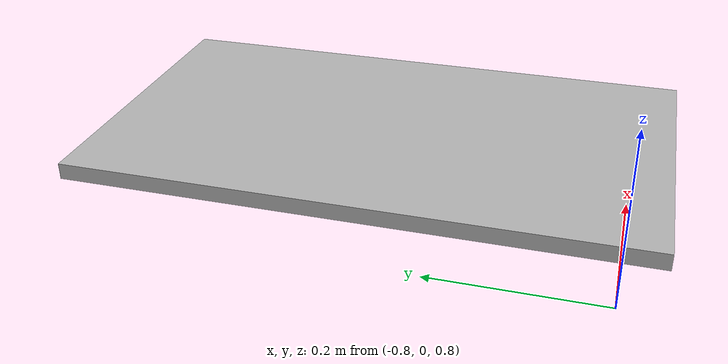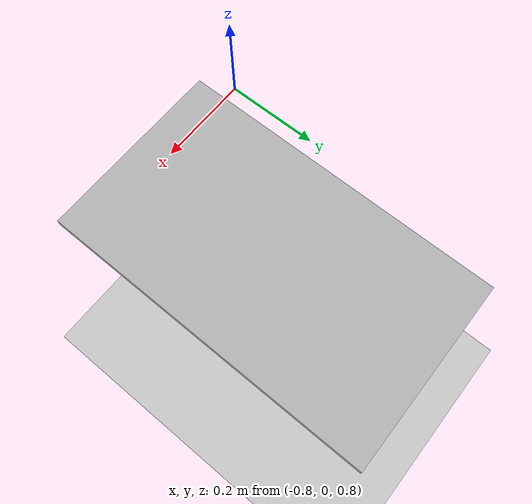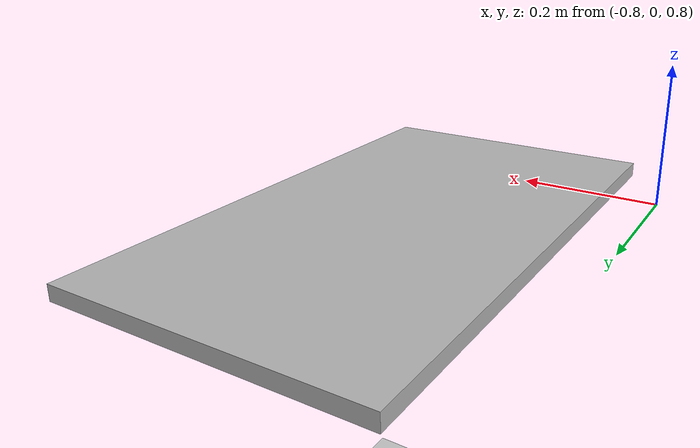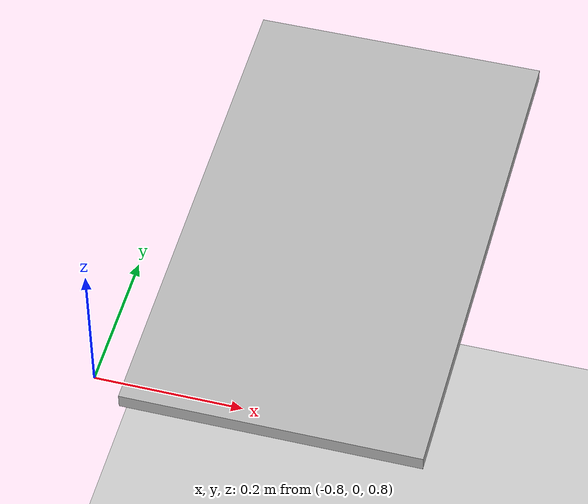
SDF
<?xml version="1.0"?>
<sdf version="1.5">
  <world name="default">
    <light name='sun' type='directional'>
      <cast_shadows>1</cast_shadows>
      <pose>0 0 10 0 -0 0</pose>
      <diffuse>0.8 0.8 0.8 1</diffuse>
      <specular>0.1 0.1 0.1 1</specular>
      <attenuation>
        <range>1000</range>
        <constant>0.9</constant>
        <linear>0.01</linear>
        <quadratic>0.001</quadratic>
      </attenuation>
      <direction>-0.5 0.5 -1</direction>
    </light>
    <model name='ground_plane'>
      <static>1</static>
      <link name='link'>
        <collision name='collision'>
          <geometry>
            <plane>
              <normal>0 0 1</normal>
              <size>100 100</size>
            </plane>
          </geometry>
          <surface>
            <friction>
              <ode>
                <mu>100</mu>
                <mu2>50</mu2>
              </ode>
            </friction>
            <contact>
              <ode/>
            </contact>
            <bounce/>
          </surface>
          <max_contacts>10</max_contacts>
        </collision>
        <visual name='visual'>
          <cast_shadows>0</cast_shadows>
          <geometry>
            <plane>
              <normal>0 0 1</normal>
              <size>100 100</size>
            </plane>
          </geometry>
          <material>
            <script>
              <uri>file://media/materials/scripts/gazebo.material</uri>
              <name>Gazebo/Grey</name>
            </script>
          </material>
        </visual>
        <velocity_decay>
          <linear>0</linear>
          <angular>0</angular>
        </velocity_decay>
        <self_collide>0</self_collide>
        <kinematic>0</kinematic>
        <gravity>1</gravity>
      </link>
    </model>
    <physics type='ode'>
      <max_step_size>0.001</max_step_size>
      <real_time_factor>1</real_time_factor>
      <real_time_update_rate>1000</real_time_update_rate>
      <gravity>0 0 -9.81</gravity>
    </physics>
    <scene>
      <ambient>0.4 0.4 0.4 1</ambient>
      <background>0.7 0.7 0.7 1</background>
      <shadows>1</shadows>
    </scene>

    <model name="WipeBoard">
	  <!--get base_frame coordinates from urdf0.08693332427 1.24829371406 0 -1.30684015359 -1.57079632679-->
      <pose>0 0 0.83 0 0 0</pose>
      <static>true</static>
      <link name="wbLink">
		<pose> -0.55 0.3 0 0 0 0 </pose>
        <collision name="wbCollision">
          <geometry>
            <box>
              <size>0.4 0.7 0.02</size>
            </box>
          </geometry>
		  <surface>
            <friction>
              <ode>
                <mu>0</mu>
                <mu2>0</mu2>
              </ode>
            </friction>
            <contact>
              <ode/>
            </contact>
            <bounce/>
          </surface>
        </collision>

        <visual name="wbVisual">
          <geometry>
            <box>
              <size>0.4 0.7 0.02</size>
            </box>
          </geometry>
        </visual>

        <sensor name='wbContact' type='contact'>
          <contact>
            <collision>wbCollision</collision>
          </contact>
	  <always_on>true</always_on>
	  <update_rate>1000</update_rate>
        </sensor>
      </link>
    </model>
    <gui fullscreen='0'>
      <camera name='user_camera'>
        <pose frame=''>-2.5 0.1 2.5 0 0.55 0.025</pose>
        <view_controller>orbit</view_controller>
        <projection_type>perspective</projection_type>
      </camera>
    </gui>
  </world>
</sdf>
